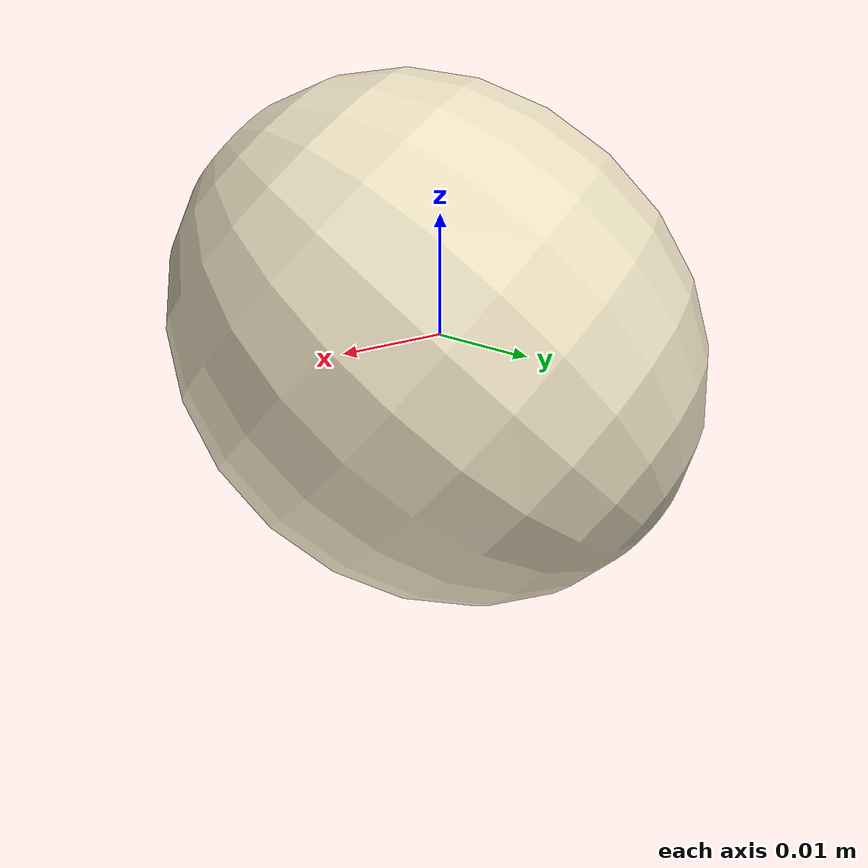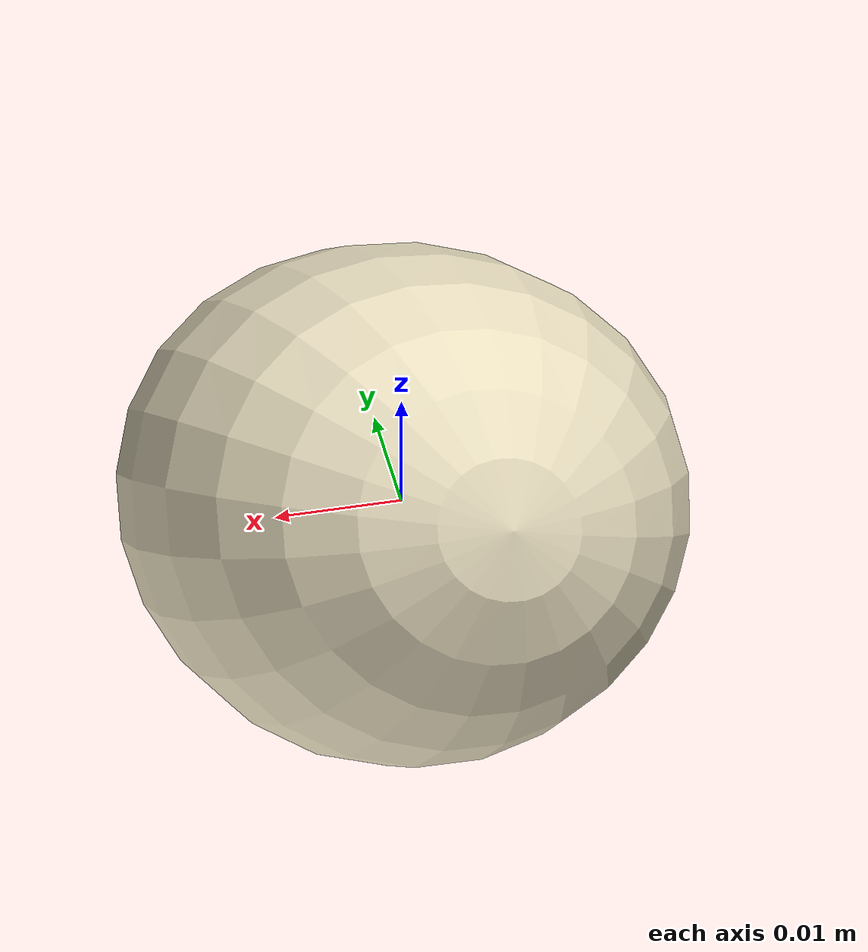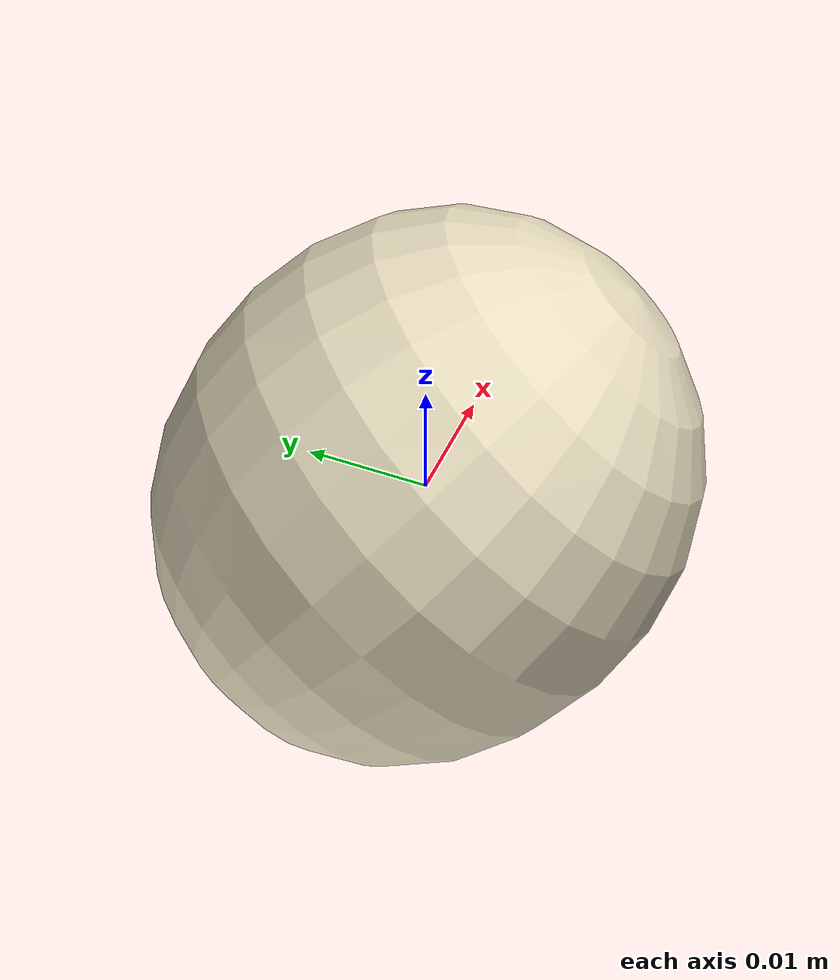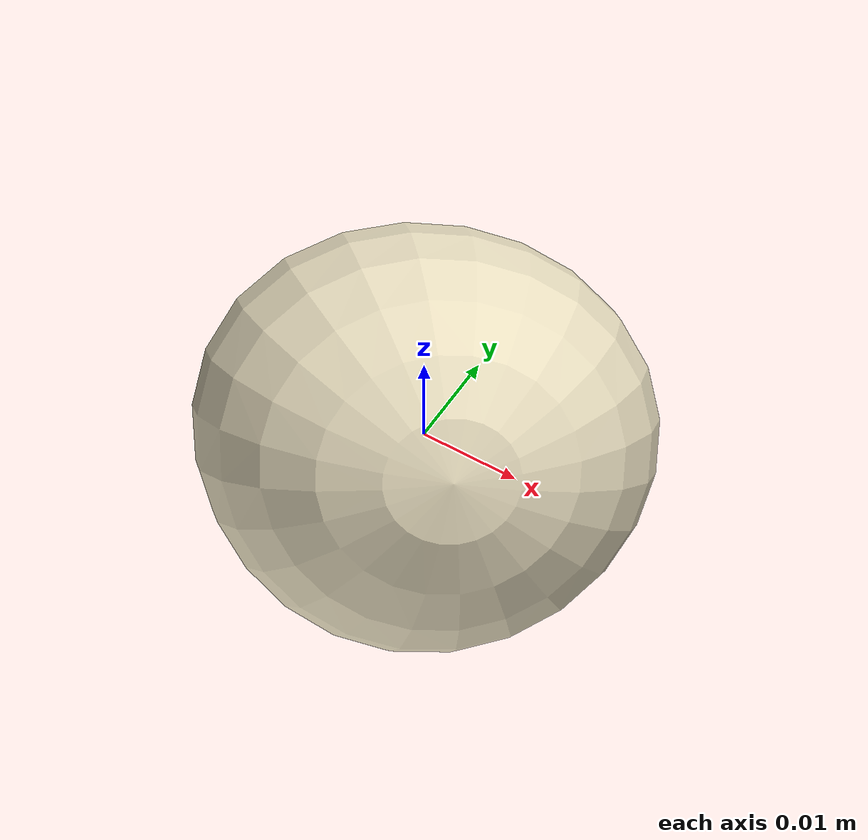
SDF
<?xml version="1.0"?>
<sdf version="1.7">
  <model name="cotton_pick_B_09">
    <static>false</static>
    <allow_auto_disable>false</allow_auto_disable>
    <link name="cotton_pick_B_09_link">
      <gravity>false</gravity>
      <self_collide>false</self_collide>
      <inertial>
        <mass>0.01200</mass>
        <inertia>
          <ixx>0.00000175</ixx>
          <iyy>0.00000175</iyy>
          <izz>0.00000175</izz>
          <ixy>0</ixy>
          <ixz>0</ixz>
          <iyz>0</iyz>
        </inertia>
      </inertial>
      <visual name="cotton_pick_B_09_visual">
        <geometry>
          <mesh>
            <uri>model://cotton_pick_B_09/meshes/cotton_pick_B_09.dae</uri>
          </mesh>
        </geometry>
      </visual>
      <collision name="cotton_pick_B_09_sphere_collision">
        <geometry>
          <sphere>
            <radius>0.01910</radius>
          </sphere>
        </geometry>
        <surface>
          <friction>
            <ode>
              <mu>1.6</mu>
              <mu2>1.6</mu2>
            </ode>
          </friction>
          <contact>
            <ode>
              <kp>8000</kp>
              <kd>80</kd>
            </ode>
          </contact>
        </surface>
      </collision>
    </link>
  </model>
</sdf>
